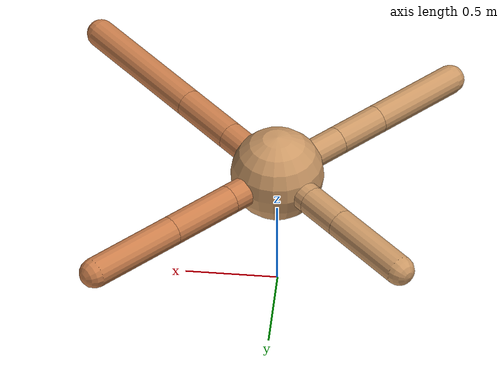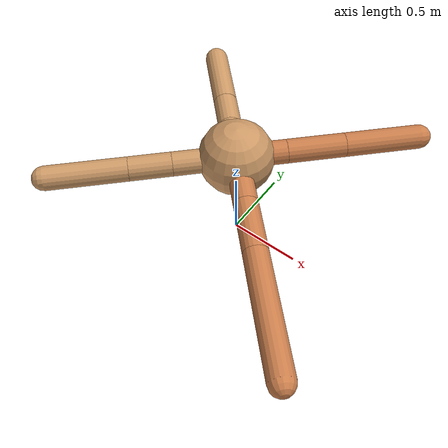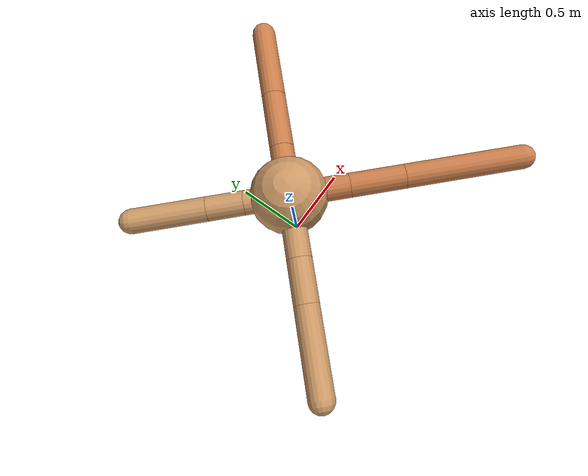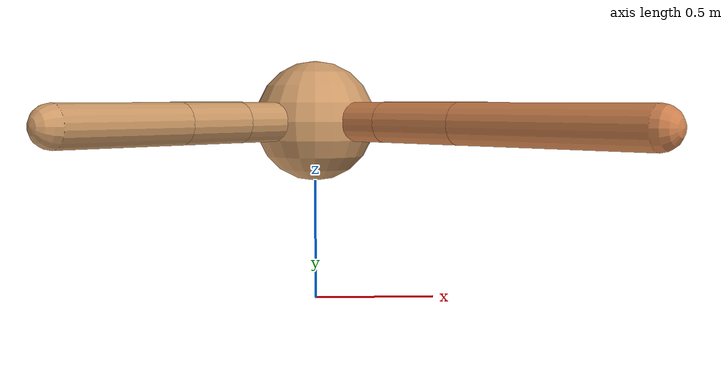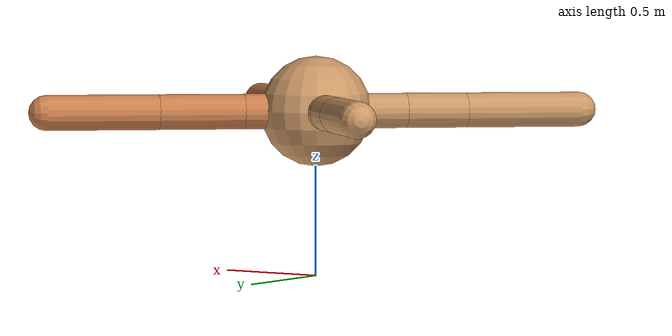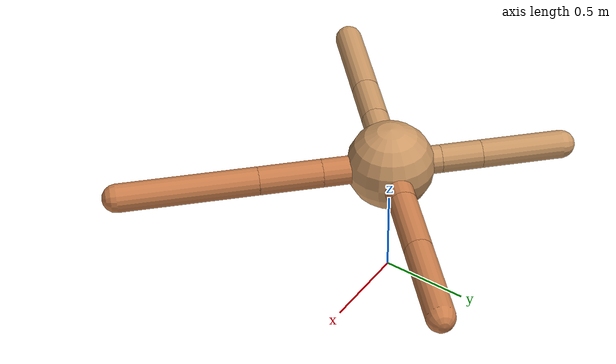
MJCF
<mujoco model="ant">
  <compiler angle="degree" coordinate="local" inertiafromgeom="true" />
  <option integrator="RK4" timestep="0.01" />
  <custom>
    <numeric data="0.0 0.0 0.55 1.0 0.0 0.0 0.0 0.0 1.0 0.0 -1.0 0.0 -1.0 0.0 1.0" name="init_qpos" />
  </custom>
  <default>
    <joint armature="1" damping="1" limited="true" />
    <geom conaffinity="0" condim="3" density="5.0" friction="1.5 0.1 0.1" margin="0.01" rgba="0.8 0.6 0.4 1" />
  </default>
  <worldbody>
    <body name="torso" pos="0 0 0.75">
      <geom name="torso_geom" pos="0 0 0" size="0.25" type="sphere" />

      <body name="front_left_leg" pos="0 0 0">
        <geom fromto="0.0 0.0 0.0 0.23380582827271834 0.23380582827271834 0.0" name="aux_1_geom" size="0.08" type="capsule" rgba=".8 .5 .3 1" />
        <body name="aux_1" pos="0.23380582827271834 0.23380582827271834 0.0">
          <joint axis="0 0 1" name="hip_1" pos="0.0 0.0 0.0" range="-40 40" type="hinge" />
          <geom fromto="0.0 0.0 0.0 0.27333822155636495 0.27333822155636495 0.0" name="left_leg_geom" size="0.08" type="capsule" rgba=".8 .5 .3 1" />
          <body pos="0.27333822155636495 0.27333822155636495 0.0" name="front_left_foot">
            <joint axis="-1 1 0" name="ankle_1" pos="0.0 0.0 0.0" range="30 100" type="hinge" />
            <geom fromto="0.0 0.0 0.0 0.35719280377022344 0.35719280377022344 0.0" name="left_ankle_geom" size="0.08" type="capsule" rgba=".8 .5 .3 1" />
          </body>
        </body>
      </body>
      <body name="front_right_leg" pos="0 0 0">
        <geom fromto="0.0 0.0 0.0 -0.20182185357740245 0.20182185357740245 0.0" name="aux_2_geom" size="0.08" type="capsule" />
        <body name="aux_2" pos="-0.20182185357740245 0.20182185357740245 0.0">
          <joint axis="0 0 1" name="hip_2" pos="0.0 0.0 0.0" range="-40 40" type="hinge" />
          <geom fromto="0.0 0.0 0.0 -0.1645130679325012 0.1645130679325012 0.0" name="right_leg_geom" size="0.08" type="capsule" />
          <body pos="-0.1645130679325012 0.1645130679325012 0.0" name="front_right_foot">
            <joint axis="1 1 0" name="ankle_2" pos="0.0 0.0 0.0" range="-100 -30" type="hinge" />
            <geom fromto="0.0 0.0 0.0 -0.32994081357090715 0.32994081357090715 0.0" name="right_ankle_geom" size="0.08" type="capsule" />
          </body>
        </body>
      </body>
      <body name="left_back_leg" pos="0 0 0">
        <geom fromto="0.0 0.0 0.0 -0.2932492563813123 -0.2932492563813123 0.0" name="aux_3_geom" size="0.08" type="capsule" />
        <body name="aux_3" pos="-0.2932492563813123 -0.2932492563813123 0.0">
          <joint axis="0 0 1" name="hip_3" pos="0.0 0.0 0.0" range="-40 40" type="hinge" />
          <geom fromto="0.0 0.0 0.0 -0.1974570412724615 -0.1974570412724615 0.0" name="back_leg_geom" size="0.08" type="capsule" />
          <body pos="-0.1974570412724615 -0.1974570412724615 0.0" name="left_back_foot">
            <joint axis="-1 1 0" name="ankle_3" pos="0.0 0.0 0.0" range="-100 -30" type="hinge" />
            <geom fromto="0.0 0.0 0.0 -0.3749377743454527 -0.3749377743454527 0.0" name="third_ankle_geom" size="0.08" type="capsule" />
          </body>
        </body>
      </body>
      <body name="right_back_leg" pos="0 0 0">
        <geom fromto="0.0 0.0 0.0 0.2742683976411389 -0.2742683976411389 0.0" name="aux_4_geom" size="0.08" type="capsule" rgba=".8 .5 .3 1" />
        <body name="aux_4" pos="0.2742683976411389 -0.2742683976411389 0.0">
          <joint axis="0 0 1" name="hip_4" pos="0.0 0.0 0.0" range="-40 40" type="hinge" />
          <geom fromto="0.0 0.0 0.0 0.2526948062655831 -0.2526948062655831 0.0" name="rightback_leg_geom" size="0.08" type="capsule" rgba=".8 .5 .3 1" />
          <body pos="0.2526948062655831 -0.2526948062655831 0.0" name="right_back_foot">
            <joint axis="1 1 0" name="ankle_4" pos="0.0 0.0 0.0" range="30 100" type="hinge" />
            <geom fromto="0.0 0.0 0.0 0.5540898987459432 -0.5540898987459432 0.0" name="fourth_ankle_geom" size="0.08" type="capsule" rgba=".8 .5 .3 1" />
          </body>
        </body>
      </body>
    </body>
  </worldbody>
  <actuator>
    <motor ctrllimited="true" ctrlrange="-1.0 1.0" joint="hip_4" gear="150" />
    <motor ctrllimited="true" ctrlrange="-1.0 1.0" joint="ankle_4" gear="150" />
    <motor ctrllimited="true" ctrlrange="-1.0 1.0" joint="hip_1" gear="150" />
    <motor ctrllimited="true" ctrlrange="-1.0 1.0" joint="ankle_1" gear="150" />
    <motor ctrllimited="true" ctrlrange="-1.0 1.0" joint="hip_2" gear="150" />
    <motor ctrllimited="true" ctrlrange="-1.0 1.0" joint="ankle_2" gear="150" />
    <motor ctrllimited="true" ctrlrange="-1.0 1.0" joint="hip_3" gear="150" />
    <motor ctrllimited="true" ctrlrange="-1.0 1.0" joint="ankle_3" gear="150" />
  </actuator>
</mujoco>
